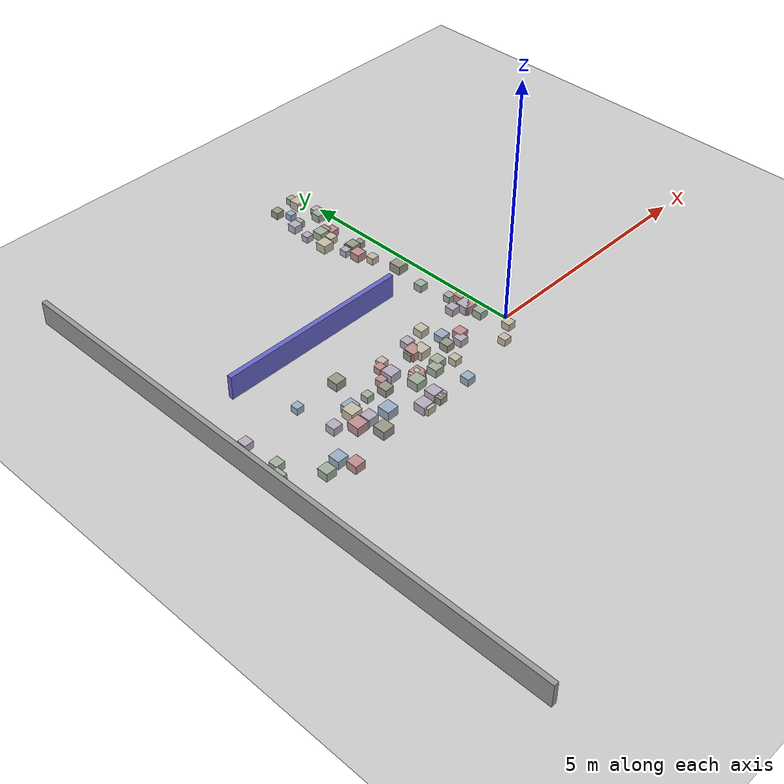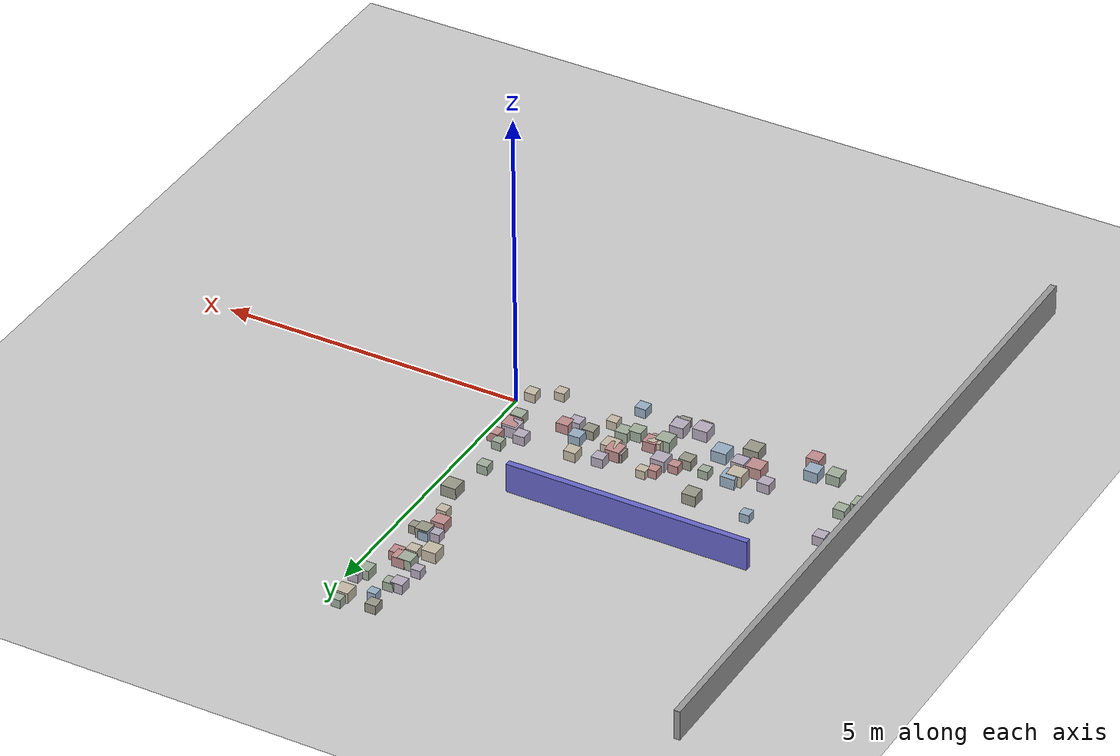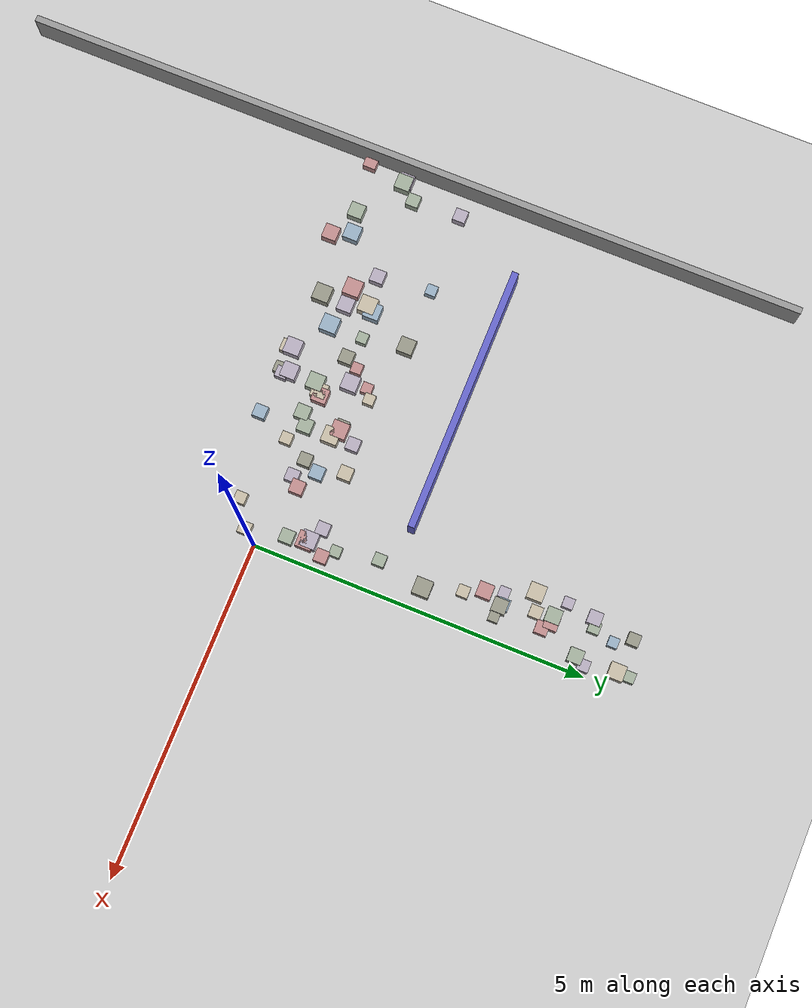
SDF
<sdf version="1.6">
 <world name="small_maze_world">
  <include><uri>model://ground_plane</uri></include>
  <include><uri>model://sun</uri></include>
  <model name="wall_west">
   <static>true</static>
   <pose>-6 0 0.25 0 0 0</pose>
   <link name="link">
    <collision name="collision"><geometry><box><size>0.1 12 0.5</size></box></geometry></collision>
    <visual name="visual">
     <geometry><box><size>0.1 12 0.5</size></box></geometry>
     <material><ambient>0.6 0.6 0.6 1</ambient></material>
    </visual>
   </link>
  </model>
  <model name="maze_wall_1">
   <static>true</static>
   <pose>-3 2 0.25 0 0 0</pose>
   <link name="link">
    <collision name="collision"><geometry><box><size>4 0.1 0.5</size></box></geometry></collision>
    <visual name="visual">
     <geometry><box><size>4 0.1 0.5</size></box></geometry>
     <material><ambient>0.4 0.4 0.8 1</ambient></material>
    </visual>
   </link>
  </model>
  <model name="box_3">
   <static>false</static>
   <pose>-2.35 0.05 0.05 0 0 0</pose>
   <link name="link">
    <inertial>
     <mass>0.2</mass>
     <inertia><ixx>0.001</ixx><iyy>0.001</iyy><izz>0.001</izz><ixy>0</ixy><ixz>0</ixz><iyz>0</iyz></inertia>
    </inertial>
    <collision name="collision"><geometry><box><size>0.22 0.22 0.22</size></box></geometry></collision>
    <visual name="visual">
     <geometry><box><size>0.22 0.22 0.22</size></box></geometry>
     <material><ambient>0.76 0.56 0.56 1</ambient><diffuse>0.76 0.56 0.56 1</diffuse></material>
    </visual>
   </link>
  </model>
  <model name="box_5">
   <static>false</static>
   <pose>-0.54 4.31 0.05 0 0 0</pose>
   <link name="link">
    <inertial>
     <mass>0.2</mass>
     <inertia><ixx>0.001</ixx><iyy>0.001</iyy><izz>0.001</izz><ixy>0</ixy><ixz>0</ixz><iyz>0</iyz></inertia>
    </inertial>
    <collision name="collision"><geometry><box><size>0.21 0.21 0.21</size></box></geometry></collision>
    <visual name="visual">
     <geometry><box><size>0.21 0.21 0.21</size></box></geometry>
     <material><ambient>0.76 0.56 0.56 1</ambient><diffuse>0.76 0.56 0.56 1</diffuse></material>
    </visual>
   </link>
  </model>
  <model name="box_6">
   <static>false</static>
   <pose>-3.02 0.18 0.05 0 0 0</pose>
   <link name="link">
    <inertial>
     <mass>0.2</mass>
     <inertia><ixx>0.001</ixx><iyy>0.001</iyy><izz>0.001</izz><ixy>0</ixy><ixz>0</ixz><iyz>0</iyz></inertia>
    </inertial>
    <collision name="collision"><geometry><box><size>0.2 0.2 0.2</size></box></geometry></collision>
    <visual name="visual">
     <geometry><box><size>0.2 0.2 0.2</size></box></geometry>
     <material><ambient>0.6 0.6 0.54 1</ambient><diffuse>0.6 0.6 0.54 1</diffuse></material>
    </visual>
   </link>
  </model>
  <model name="box_11">
   <static>false</static>
   <pose>-2.52 -0.5 0.05 0 0 0</pose>
   <link name="link">
    <inertial>
     <mass>0.2</mass>
     <inertia><ixx>0.001</ixx><iyy>0.001</iyy><izz>0.001</izz><ixy>0</ixy><ixz>0</ixz><iyz>0</iyz></inertia>
    </inertial>
    <collision name="collision"><geometry><box><size>0.23 0.23 0.23</size></box></geometry></collision>
    <visual name="visual">
     <geometry><box><size>0.23 0.23 0.23</size></box></geometry>
     <material><ambient>0.72 0.68 0.75 1</ambient><diffuse>0.72 0.68 0.75 1</diffuse></material>
    </visual>
   </link>
  </model>
  <model name="box_15">
   <static>false</static>
   <pose>-2.52 -0.65 0.05 0 0 0</pose>
   <link name="link">
    <inertial>
     <mass>0.2</mass>
     <inertia><ixx>0.001</ixx><iyy>0.001</iyy><izz>0.001</izz><ixy>0</ixy><ixz>0</ixz><iyz>0</iyz></inertia>
    </inertial>
    <collision name="collision"><geometry><box><size>0.17 0.17 0.17</size></box></geometry></collision>
    <visual name="visual">
     <geometry><box><size>0.17 0.17 0.17</size></box></geometry>
     <material><ambient>0.6 0.6 0.54 1</ambient><diffuse>0.6 0.6 0.54 1</diffuse></material>
    </visual>
   </link>
  </model>
  <model name="box_19">
   <static>false</static>
   <pose>-2.85 -0.67 0.05 0 0 0</pose>
   <link name="link">
    <inertial>
     <mass>0.2</mass>
     <inertia><ixx>0.001</ixx><iyy>0.001</iyy><izz>0.001</izz><ixy>0</ixy><ixz>0</ixz><iyz>0</iyz></inertia>
    </inertial>
    <collision name="collision"><geometry><box><size>0.19 0.19 0.19</size></box></geometry></collision>
    <visual name="visual">
     <geometry><box><size>0.19 0.19 0.19</size></box></geometry>
     <material><ambient>0.78 0.74 0.66 1</ambient><diffuse>0.78 0.74 0.66 1</diffuse></material>
    </visual>
   </link>
  </model>
  <model name="box_48">
   <static>false</static>
   <pose>-2.41 0.01 0.05 0 0 0</pose>
   <link name="link">
    <inertial>
     <mass>0.2</mass>
     <inertia><ixx>0.001</ixx><iyy>0.001</iyy><izz>0.001</izz><ixy>0</ixy><ixz>0</ixz><iyz>0</iyz></inertia>
    </inertial>
    <collision name="collision"><geometry><box><size>0.22 0.22 0.22</size></box></geometry></collision>
    <visual name="visual">
     <geometry><box><size>0.22 0.22 0.22</size></box></geometry>
     <material><ambient>0.78 0.74 0.66 1</ambient><diffuse>0.78 0.74 0.66 1</diffuse></material>
    </visual>
   </link>
  </model>
  <model name="box_56">
   <static>false</static>
   <pose>-0.24 5.4 0.05 0 0 0</pose>
   <link name="link">
    <inertial>
     <mass>0.2</mass>
     <inertia><ixx>0.001</ixx><iyy>0.001</iyy><izz>0.001</izz><ixy>0</ixy><ixz>0</ixz><iyz>0</iyz></inertia>
    </inertial>
    <collision name="collision"><geometry><box><size>0.23 0.23 0.23</size></box></geometry></collision>
    <visual name="visual">
     <geometry><box><size>0.23 0.23 0.23</size></box></geometry>
     <material><ambient>0.78 0.74 0.66 1</ambient><diffuse>0.78 0.74 0.66 1</diffuse></material>
    </visual>
   </link>
  </model>
  <model name="box_68">
   <static>false</static>
   <pose>-3.74 -0.13 0.05 0 0 0</pose>
   <link name="link">
    <inertial>
     <mass>0.2</mass>
     <inertia><ixx>0.001</ixx><iyy>0.001</iyy><izz>0.001</izz><ixy>0</ixy><ixz>0</ixz><iyz>0</iyz></inertia>
    </inertial>
    <collision name="collision"><geometry><box><size>0.22 0.22 0.22</size></box></geometry></collision>
    <visual name="visual">
     <geometry><box><size>0.22 0.22 0.22</size></box></geometry>
     <material><ambient>0.72 0.68 0.75 1</ambient><diffuse>0.72 0.68 0.75 1</diffuse></material>
    </visual>
   </link>
  </model>
  <model name="box_69">
   <static>false</static>
   <pose>-2.92 0.38 0.05 0 0 0</pose>
   <link name="link">
    <inertial>
     <mass>0.2</mass>
     <inertia><ixx>0.001</ixx><iyy>0.001</iyy><izz>0.001</izz><ixy>0</ixy><ixz>0</ixz><iyz>0</iyz></inertia>
    </inertial>
    <collision name="collision"><geometry><box><size>0.16 0.16 0.16</size></box></geometry></collision>
    <visual name="visual">
     <geometry><box><size>0.16 0.16 0.16</size></box></geometry>
     <material><ambient>0.76 0.56 0.56 1</ambient><diffuse>0.76 0.56 0.56 1</diffuse></material>
    </visual>
   </link>
  </model>
  <model name="box_71">
   <static>false</static>
   <pose>-2.03 -0.09 0.05 0 0 0</pose>
   <link name="link">
    <inertial>
     <mass>0.2</mass>
     <inertia><ixx>0.001</ixx><iyy>0.001</iyy><izz>0.001</izz><ixy>0</ixy><ixz>0</ixz><iyz>0</iyz></inertia>
    </inertial>
    <collision name="collision"><geometry><box><size>0.21 0.21 0.21</size></box></geometry></collision>
    <visual name="visual">
     <geometry><box><size>0.21 0.21 0.21</size></box></geometry>
     <material><ambient>0.64 0.69 0.62 1</ambient><diffuse>0.64 0.69 0.62 1</diffuse></material>
    </visual>
   </link>
  </model>
  <model name="box_82">
   <static>false</static>
   <pose>-0.35 0.71 0.05 0 0 0</pose>
   <link name="link">
    <inertial>
     <mass>0.2</mass>
     <inertia><ixx>0.001</ixx><iyy>0.001</iyy><izz>0.001</izz><ixy>0</ixy><ixz>0</ixz><iyz>0</iyz></inertia>
    </inertial>
    <collision name="collision"><geometry><box><size>0.24 0.24 0.24</size></box></geometry></collision>
    <visual name="visual">
     <geometry><box><size>0.24 0.24 0.24</size></box></geometry>
     <material><ambient>0.72 0.68 0.75 1</ambient><diffuse>0.72 0.68 0.75 1</diffuse></material>
    </visual>
   </link>
  </model>
  <model name="box_84">
   <static>false</static>
   <pose>-3.49 0.92 0.05 0 0 0</pose>
   <link name="link">
    <inertial>
     <mass>0.2</mass>
     <inertia><ixx>0.001</ixx><iyy>0.001</iyy><izz>0.001</izz><ixy>0</ixy><ixz>0</ixz><iyz>0</iyz></inertia>
    </inertial>
    <collision name="collision"><geometry><box><size>0.23 0.23 0.23</size></box></geometry></collision>
    <visual name="visual">
     <geometry><box><size>0.23 0.23 0.23</size></box></geometry>
     <material><ambient>0.6 0.6 0.54 1</ambient><diffuse>0.6 0.6 0.54 1</diffuse></material>
    </visual>
   </link>
  </model>
  <model name="box_85">
   <static>false</static>
   <pose>-0.6 4.05 0.05 0 0 0</pose>
   <link name="link">
    <inertial>
     <mass>0.2</mass>
     <inertia><ixx>0.001</ixx><iyy>0.001</iyy><izz>0.001</izz><ixy>0</ixy><ixz>0</ixz><iyz>0</iyz></inertia>
    </inertial>
    <collision name="collision"><geometry><box><size>0.18 0.18 0.18</size></box></geometry></collision>
    <visual name="visual">
     <geometry><box><size>0.18 0.18 0.18</size></box></geometry>
     <material><ambient>0.78 0.74 0.66 1</ambient><diffuse>0.78 0.74 0.66 1</diffuse></material>
    </visual>
   </link>
  </model>
  <model name="box_100">
   <static>false</static>
   <pose>-1.43 0.82 0.05 0 0 0</pose>
   <link name="link">
    <inertial>
     <mass>0.2</mass>
     <inertia><ixx>0.001</ixx><iyy>0.001</iyy><izz>0.001</izz><ixy>0</ixy><ixz>0</ixz><iyz>0</iyz></inertia>
    </inertial>
    <collision name="collision"><geometry><box><size>0.2 0.2 0.2</size></box></geometry></collision>
    <visual name="visual">
     <geometry><box><size>0.2 0.2 0.2</size></box></geometry>
     <material><ambient>0.78 0.74 0.66 1</ambient><diffuse>0.78 0.74 0.66 1</diffuse></material>
    </visual>
   </link>
  </model>
  <model name="box_109">
   <static>false</static>
   <pose>-5.58 0.18 0.05 0 0 0</pose>
   <link name="link">
    <inertial>
     <mass>0.2</mass>
     <inertia><ixx>0.001</ixx><iyy>0.001</iyy><izz>0.001</izz><ixy>0</ixy><ixz>0</ixz><iyz>0</iyz></inertia>
    </inertial>
    <collision name="collision"><geometry><box><size>0.19 0.19 0.19</size></box></geometry></collision>
    <visual name="visual">
     <geometry><box><size>0.19 0.19 0.19</size></box></geometry>
     <material><ambient>0.64 0.69 0.62 1</ambient><diffuse>0.64 0.69 0.62 1</diffuse></material>
    </visual>
   </link>
  </model>
  <model name="box_113">
   <static>false</static>
   <pose>-4.41 0.94 0.05 0 0 0</pose>
   <link name="link">
    <inertial>
     <mass>0.2</mass>
     <inertia><ixx>0.001</ixx><iyy>0.001</iyy><izz>0.001</izz><ixy>0</ixy><ixz>0</ixz><iyz>0</iyz></inertia>
    </inertial>
    <collision name="collision"><geometry><box><size>0.16 0.16 0.16</size></box></geometry></collision>
    <visual name="visual">
     <geometry><box><size>0.16 0.16 0.16</size></box></geometry>
     <material><ambient>0.6 0.69 0.77 1</ambient><diffuse>0.6 0.69 0.77 1</diffuse></material>
    </visual>
   </link>
  </model>
  <model name="box_115">
   <static>false</static>
   <pose>-0.28 0.4 0.05 0 0 0</pose>
   <link name="link">
    <inertial>
     <mass>0.2</mass>
     <inertia><ixx>0.001</ixx><iyy>0.001</iyy><izz>0.001</izz><ixy>0</ixy><ixz>0</ixz><iyz>0</iyz></inertia>
    </inertial>
    <collision name="collision"><geometry><box><size>0.2 0.2 0.2</size></box></geometry></collision>
    <visual name="visual">
     <geometry><box><size>0.2 0.2 0.2</size></box></geometry>
     <material><ambient>0.64 0.69 0.62 1</ambient><diffuse>0.64 0.69 0.62 1</diffuse></material>
    </visual>
   </link>
  </model>
  <model name="box_128">
   <static>false</static>
   <pose>-0.83 4.85 0.05 0 0 0</pose>
   <link name="link">
    <inertial>
     <mass>0.2</mass>
     <inertia><ixx>0.001</ixx><iyy>0.001</iyy><izz>0.001</izz><ixy>0</ixy><ixz>0</ixz><iyz>0</iyz></inertia>
    </inertial>
    <collision name="collision"><geometry><box><size>0.2 0.2 0.2</size></box></geometry></collision>
    <visual name="visual">
     <geometry><box><size>0.2 0.2 0.2</size></box></geometry>
     <material><ambient>0.72 0.68 0.75 1</ambient><diffuse>0.72 0.68 0.75 1</diffuse></material>
    </visual>
   </link>
  </model>
  <model name="box_134">
   <static>false</static>
   <pose>-0.42 4.21 0.05 0 0 0</pose>
   <link name="link">
    <inertial>
     <mass>0.2</mass>
     <inertia><ixx>0.001</ixx><iyy>0.001</iyy><izz>0.001</izz><ixy>0</ixy><ixz>0</ixz><iyz>0</iyz></inertia>
    </inertial>
    <collision name="collision"><geometry><box><size>0.19 0.19 0.19</size></box></geometry></collision>
    <visual name="visual">
     <geometry><box><size>0.19 0.19 0.19</size></box></geometry>
     <material><ambient>0.76 0.56 0.56 1</ambient><diffuse>0.76 0.56 0.56 1</diffuse></material>
    </visual>
   </link>
  </model>
  <model name="box_135">
   <static>false</static>
   <pose>-0.61 5.21 0.05 0 0 0</pose>
   <link name="link">
    <inertial>
     <mass>0.2</mass>
     <inertia><ixx>0.001</ixx><iyy>0.001</iyy><izz>0.001</izz><ixy>0</ixy><ixz>0</ixz><iyz>0</iyz></inertia>
    </inertial>
    <collision name="collision"><geometry><box><size>0.15 0.15 0.15</size></box></geometry></collision>
    <visual name="visual">
     <geometry><box><size>0.15 0.15 0.15</size></box></geometry>
     <material><ambient>0.6 0.69 0.77 1</ambient><diffuse>0.6 0.69 0.77 1</diffuse></material>
    </visual>
   </link>
  </model>
  <model name="box_142">
   <static>false</static>
   <pose>-2.87 -0.59 0.05 0 0 0</pose>
   <link name="link">
    <inertial>
     <mass>0.2</mass>
     <inertia><ixx>0.001</ixx><iyy>0.001</iyy><izz>0.001</izz><ixy>0</ixy><ixz>0</ixz><iyz>0</iyz></inertia>
    </inertial>
    <collision name="collision"><geometry><box><size>0.24 0.24 0.24</size></box></geometry></collision>
    <visual name="visual">
     <geometry><box><size>0.24 0.24 0.24</size></box></geometry>
     <material><ambient>0.72 0.68 0.75 1</ambient><diffuse>0.72 0.68 0.75 1</diffuse></material>
    </visual>
   </link>
  </model>
  <model name="box_143">
   <static>false</static>
   <pose>-2.46 -0.6 0.05 0 0 0</pose>
   <link name="link">
    <inertial>
     <mass>0.2</mass>
     <inertia><ixx>0.001</ixx><iyy>0.001</iyy><izz>0.001</izz><ixy>0</ixy><ixz>0</ixz><iyz>0</iyz></inertia>
    </inertial>
    <collision name="collision"><geometry><box><size>0.17 0.17 0.17</size></box></geometry></collision>
    <visual name="visual">
     <geometry><box><size>0.17 0.17 0.17</size></box></geometry>
     <material><ambient>0.72 0.68 0.75 1</ambient><diffuse>0.72 0.68 0.75 1</diffuse></material>
    </visual>
   </link>
  </model>
  <model name="box_144">
   <static>false</static>
   <pose>-0.32 2.45 0.05 0 0 0</pose>
   <link name="link">
    <inertial>
     <mass>0.2</mass>
     <inertia><ixx>0.001</ixx><iyy>0.001</iyy><izz>0.001</izz><ixy>0</ixy><ixz>0</ixz><iyz>0</iyz></inertia>
    </inertial>
    <collision name="collision"><geometry><box><size>0.25 0.25 0.25</size></box></geometry></collision>
    <visual name="visual">
     <geometry><box><size>0.25 0.25 0.25</size></box></geometry>
     <material><ambient>0.6 0.6 0.54 1</ambient><diffuse>0.6 0.6 0.54 1</diffuse></material>
    </visual>
   </link>
  </model>
  <model name="box_147">
   <static>false</static>
   <pose>-1.86 0.42 0.05 0 0 0</pose>
   <link name="link">
    <inertial>
     <mass>0.2</mass>
     <inertia><ixx>0.001</ixx><iyy>0.001</iyy><izz>0.001</izz><ixy>0</ixy><ixz>0</ixz><iyz>0</iyz></inertia>
    </inertial>
    <collision name="collision"><geometry><box><size>0.24 0.24 0.24</size></box></geometry></collision>
    <visual name="visual">
     <geometry><box><size>0.24 0.24 0.24</size></box></geometry>
     <material><ambient>0.78 0.74 0.66 1</ambient><diffuse>0.78 0.74 0.66 1</diffuse></material>
    </visual>
   </link>
  </model>
  <model name="box_149">
   <static>false</static>
   <pose>-3.85 0.17 0.05 0 0 0</pose>
   <link name="link">
    <inertial>
     <mass>0.2</mass>
     <inertia><ixx>0.001</ixx><iyy>0.001</iyy><izz>0.001</izz><ixy>0</ixy><ixz>0</ixz><iyz>0</iyz></inertia>
    </inertial>
    <collision name="collision"><geometry><box><size>0.25 0.25 0.25</size></box></geometry></collision>
    <visual name="visual">
     <geometry><box><size>0.25 0.25 0.25</size></box></geometry>
     <material><ambient>0.78 0.74 0.66 1</ambient><diffuse>0.78 0.74 0.66 1</diffuse></material>
    </visual>
   </link>
  </model>
  <model name="box_151">
   <static>false</static>
   <pose>-0.61 3.28 0.05 0 0 0</pose>
   <link name="link">
    <inertial>
     <mass>0.2</mass>
     <inertia><ixx>0.001</ixx><iyy>0.001</iyy><izz>0.001</izz><ixy>0</ixy><ixz>0</ixz><iyz>0</iyz></inertia>
    </inertial>
    <collision name="collision"><geometry><box><size>0.22 0.22 0.22</size></box></geometry></collision>
    <visual name="visual">
     <geometry><box><size>0.22 0.22 0.22</size></box></geometry>
     <material><ambient>0.76 0.56 0.56 1</ambient><diffuse>0.76 0.56 0.56 1</diffuse></material>
    </visual>
   </link>
  </model>
  <model name="box_160">
   <static>false</static>
   <pose>-4.01 -0.13 0.05 0 0 0</pose>
   <link name="link">
    <inertial>
     <mass>0.2</mass>
     <inertia><ixx>0.001</ixx><iyy>0.001</iyy><izz>0.001</izz><ixy>0</ixy><ixz>0</ixz><iyz>0</iyz></inertia>
    </inertial>
    <collision name="collision"><geometry><box><size>0.25 0.25 0.25</size></box></geometry></collision>
    <visual name="visual">
     <geometry><box><size>0.25 0.25 0.25</size></box></geometry>
     <material><ambient>0.76 0.56 0.56 1</ambient><diffuse>0.76 0.56 0.56 1</diffuse></material>
    </visual>
   </link>
  </model>
  <model name="box_161">
   <static>false</static>
   <pose>-1.86 0.76 0.05 0 0 0</pose>
   <link name="link">
    <inertial>
     <mass>0.2</mass>
     <inertia><ixx>0.001</ixx><iyy>0.001</iyy><izz>0.001</izz><ixy>0</ixy><ixz>0</ixz><iyz>0</iyz></inertia>
    </inertial>
    <collision name="collision"><geometry><box><size>0.19 0.19 0.19</size></box></geometry></collision>
    <visual name="visual">
     <geometry><box><size>0.19 0.19 0.19</size></box></geometry>
     <material><ambient>0.72 0.68 0.75 1</ambient><diffuse>0.72 0.68 0.75 1</diffuse></material>
    </visual>
   </link>
  </model>
  <model name="box_171">
   <static>false</static>
   <pose>-0.15 4.94 0.05 0 0 0</pose>
   <link name="link">
    <inertial>
     <mass>0.2</mass>
     <inertia><ixx>0.001</ixx><iyy>0.001</iyy><izz>0.001</izz><ixy>0</ixy><ixz>0</ixz><iyz>0</iyz></inertia>
    </inertial>
    <collision name="collision"><geometry><box><size>0.17 0.17 0.17</size></box></geometry></collision>
    <visual name="visual">
     <geometry><box><size>0.17 0.17 0.17</size></box></geometry>
     <material><ambient>0.72 0.68 0.75 1</ambient><diffuse>0.72 0.68 0.75 1</diffuse></material>
    </visual>
   </link>
  </model>
  <model name="box_178">
   <static>false</static>
   <pose>-4.79 -0.46 0.05 0 0 0</pose>
   <link name="link">
    <inertial>
     <mass>0.2</mass>
     <inertia><ixx>0.001</ixx><iyy>0.001</iyy><izz>0.001</izz><ixy>0</ixy><ixz>0</ixz><iyz>0</iyz></inertia>
    </inertial>
    <collision name="collision"><geometry><box><size>0.23 0.23 0.23</size></box></geometry></collision>
    <visual name="visual">
     <geometry><box><size>0.23 0.23 0.23</size></box></geometry>
     <material><ambient>0.6 0.69 0.77 1</ambient><diffuse>0.6 0.69 0.77 1</diffuse></material>
    </visual>
   </link>
  </model>
  <model name="box_181">
   <static>false</static>
   <pose>-5.12 -0.53 0.05 0 0 0</pose>
   <link name="link">
    <inertial>
     <mass>0.2</mass>
     <inertia><ixx>0.001</ixx><iyy>0.001</iyy><izz>0.001</izz><ixy>0</ixy><ixz>0</ixz><iyz>0</iyz></inertia>
    </inertial>
    <collision name="collision"><geometry><box><size>0.22 0.22 0.22</size></box></geometry></collision>
    <visual name="visual">
     <geometry><box><size>0.22 0.22 0.22</size></box></geometry>
     <material><ambient>0.64 0.69 0.62 1</ambient><diffuse>0.64 0.69 0.62 1</diffuse></material>
    </visual>
   </link>
  </model>
  <model name="box_191">
   <static>false</static>
   <pose>-0.86 3.96 0.05 0 0 0</pose>
   <link name="link">
    <inertial>
     <mass>0.2</mass>
     <inertia><ixx>0.001</ixx><iyy>0.001</iyy><izz>0.001</izz><ixy>0</ixy><ixz>0</ixz><iyz>0</iyz></inertia>
    </inertial>
    <collision name="collision"><geometry><box><size>0.24 0.24 0.24</size></box></geometry></collision>
    <visual name="visual">
     <geometry><box><size>0.24 0.24 0.24</size></box></geometry>
     <material><ambient>0.78 0.74 0.66 1</ambient><diffuse>0.78 0.74 0.66 1</diffuse></material>
    </visual>
   </link>
  </model>
  <model name="box_195">
   <static>false</static>
   <pose>-1.86 0.02 0.05 0 0 0</pose>
   <link name="link">
    <inertial>
     <mass>0.2</mass>
     <inertia><ixx>0.001</ixx><iyy>0.001</iyy><izz>0.001</izz><ixy>0</ixy><ixz>0</ixz><iyz>0</iyz></inertia>
    </inertial>
    <collision name="collision"><geometry><box><size>0.21 0.21 0.21</size></box></geometry></collision>
    <visual name="visual">
     <geometry><box><size>0.21 0.21 0.21</size></box></geometry>
     <material><ambient>0.64 0.69 0.62 1</ambient><diffuse>0.64 0.69 0.62 1</diffuse></material>
    </visual>
   </link>
  </model>
  <model name="box_204">
   <static>false</static>
   <pose>-0.89 4.43 0.05 0 0 0</pose>
   <link name="link">
    <inertial>
     <mass>0.2</mass>
     <inertia><ixx>0.001</ixx><iyy>0.001</iyy><izz>0.001</izz><ixy>0</ixy><ixz>0</ixz><iyz>0</iyz></inertia>
    </inertial>
    <collision name="collision"><geometry><box><size>0.16 0.16 0.16</size></box></geometry></collision>
    <visual name="visual">
     <geometry><box><size>0.16 0.16 0.16</size></box></geometry>
     <material><ambient>0.72 0.68 0.75 1</ambient><diffuse>0.72 0.68 0.75 1</diffuse></material>
    </visual>
   </link>
  </model>
  <model name="box_207">
   <static>false</static>
   <pose>-0.69 3.54 0.05 0 0 0</pose>
   <link name="link">
    <inertial>
     <mass>0.2</mass>
     <inertia><ixx>0.001</ixx><iyy>0.001</iyy><izz>0.001</izz><ixy>0</ixy><ixz>0</ixz><iyz>0</iyz></inertia>
    </inertial>
    <collision name="collision"><geometry><box><size>0.16 0.16 0.16</size></box></geometry></collision>
    <visual name="visual">
     <geometry><box><size>0.16 0.16 0.16</size></box></geometry>
     <material><ambient>0.72 0.68 0.75 1</ambient><diffuse>0.72 0.68 0.75 1</diffuse></material>
    </visual>
   </link>
  </model>
  <model name="box_214">
   <static>false</static>
   <pose>-1.81 -0.66 0.05 0 0 0</pose>
   <link name="link">
    <inertial>
     <mass>0.2</mass>
     <inertia><ixx>0.001</ixx><iyy>0.001</iyy><izz>0.001</izz><ixy>0</ixy><ixz>0</ixz><iyz>0</iyz></inertia>
    </inertial>
    <collision name="collision"><geometry><box><size>0.19 0.19 0.19</size></box></geometry></collision>
    <visual name="visual">
     <geometry><box><size>0.19 0.19 0.19</size></box></geometry>
     <material><ambient>0.6 0.69 0.77 1</ambient><diffuse>0.6 0.69 0.77 1</diffuse></material>
    </visual>
   </link>
  </model>
  <model name="box_216">
   <static>false</static>
   <pose>-3.79 0.27 0.05 0 0 0</pose>
   <link name="link">
    <inertial>
     <mass>0.2</mass>
     <inertia><ixx>0.001</ixx><iyy>0.001</iyy><izz>0.001</izz><ixy>0</ixy><ixz>0</ixz><iyz>0</iyz></inertia>
    </inertial>
    <collision name="collision"><geometry><box><size>0.24 0.24 0.24</size></box></geometry></collision>
    <visual name="visual">
     <geometry><box><size>0.24 0.24 0.24</size></box></geometry>
     <material><ambient>0.6 0.69 0.77 1</ambient><diffuse>0.6 0.69 0.77 1</diffuse></material>
    </visual>
   </link>
  </model>
  <model name="box_226">
   <static>false</static>
   <pose>-3.77 -0.51 0.05 0 0 0</pose>
   <link name="link">
    <inertial>
     <mass>0.2</mass>
     <inertia><ixx>0.001</ixx><iyy>0.001</iyy><izz>0.001</izz><ixy>0</ixy><ixz>0</ixz><iyz>0</iyz></inertia>
    </inertial>
    <collision name="collision"><geometry><box><size>0.25 0.25 0.25</size></box></geometry></collision>
    <visual name="visual">
     <geometry><box><size>0.25 0.25 0.25</size></box></geometry>
     <material><ambient>0.6 0.6 0.54 1</ambient><diffuse>0.6 0.6 0.54 1</diffuse></material>
    </visual>
   </link>
  </model>
  <model name="box_229">
   <static>false</static>
   <pose>-1.29 0.44 0.05 0 0 0</pose>
   <link name="link">
    <inertial>
     <mass>0.2</mass>
     <inertia><ixx>0.001</ixx><iyy>0.001</iyy><izz>0.001</izz><ixy>0</ixy><ixz>0</ixz><iyz>0</iyz></inertia>
    </inertial>
    <collision name="collision"><geometry><box><size>0.2 0.2 0.2</size></box></geometry></collision>
    <visual name="visual">
     <geometry><box><size>0.2 0.2 0.2</size></box></geometry>
     <material><ambient>0.6 0.69 0.77 1</ambient><diffuse>0.6 0.69 0.77 1</diffuse></material>
    </visual>
   </link>
  </model>
  <model name="box_232">
   <static>false</static>
   <pose>-0.53 3.59 0.05 0 0 0</pose>
   <link name="link">
    <inertial>
     <mass>0.2</mass>
     <inertia><ixx>0.001</ixx><iyy>0.001</iyy><izz>0.001</izz><ixy>0</ixy><ixz>0</ixz><iyz>0</iyz></inertia>
    </inertial>
    <collision name="collision"><geometry><box><size>0.17 0.17 0.17</size></box></geometry></collision>
    <visual name="visual">
     <geometry><box><size>0.17 0.17 0.17</size></box></geometry>
     <material><ambient>0.6 0.69 0.77 1</ambient><diffuse>0.6 0.69 0.77 1</diffuse></material>
    </visual>
   </link>
  </model>
  <model name="box_241">
   <static>false</static>
   <pose>-2.51 -0.09 0.05 0 0 0</pose>
   <link name="link">
    <inertial>
     <mass>0.2</mass>
     <inertia><ixx>0.001</ixx><iyy>0.001</iyy><izz>0.001</izz><ixy>0</ixy><ixz>0</ixz><iyz>0</iyz></inertia>
    </inertial>
    <collision name="collision"><geometry><box><size>0.24 0.24 0.24</size></box></geometry></collision>
    <visual name="visual">
     <geometry><box><size>0.24 0.24 0.24</size></box></geometry>
     <material><ambient>0.64 0.69 0.62 1</ambient><diffuse>0.64 0.69 0.62 1</diffuse></material>
    </visual>
   </link>
  </model>
  <model name="box_243">
   <static>false</static>
   <pose>-4.67 -0.75 0.05 0 0 0</pose>
   <link name="link">
    <inertial>
     <mass>0.2</mass>
     <inertia><ixx>0.001</ixx><iyy>0.001</iyy><izz>0.001</izz><ixy>0</ixy><ixz>0</ixz><iyz>0</iyz></inertia>
    </inertial>
    <collision name="collision"><geometry><box><size>0.22 0.22 0.22</size></box></geometry></collision>
    <visual name="visual">
     <geometry><box><size>0.22 0.22 0.22</size></box></geometry>
     <material><ambient>0.76 0.56 0.56 1</ambient><diffuse>0.76 0.56 0.56 1</diffuse></material>
    </visual>
   </link>
  </model>
  <model name="box_246">
   <static>false</static>
   <pose>-0.7 4.89 0.05 0 0 0</pose>
   <link name="link">
    <inertial>
     <mass>0.2</mass>
     <inertia><ixx>0.001</ixx><iyy>0.001</iyy><izz>0.001</izz><ixy>0</ixy><ixz>0</ixz><iyz>0</iyz></inertia>
    </inertial>
    <collision name="collision"><geometry><box><size>0.17 0.17 0.17</size></box></geometry></collision>
    <visual name="visual">
     <geometry><box><size>0.17 0.17 0.17</size></box></geometry>
     <material><ambient>0.64 0.69 0.62 1</ambient><diffuse>0.64 0.69 0.62 1</diffuse></material>
    </visual>
   </link>
  </model>
  <model name="box_252">
   <static>false</static>
   <pose>-2.7 0.63 0.05 0 0 0</pose>
   <link name="link">
    <inertial>
     <mass>0.2</mass>
     <inertia><ixx>0.001</ixx><iyy>0.001</iyy><izz>0.001</izz><ixy>0</ixy><ixz>0</ixz><iyz>0</iyz></inertia>
    </inertial>
    <collision name="collision"><geometry><box><size>0.16 0.16 0.16</size></box></geometry></collision>
    <visual name="visual">
     <geometry><box><size>0.16 0.16 0.16</size></box></geometry>
     <material><ambient>0.76 0.56 0.56 1</ambient><diffuse>0.76 0.56 0.56 1</diffuse></material>
    </visual>
   </link>
  </model>
  <model name="box_266">
   <static>false</static>
   <pose>-0.34 1.12 0.05 0 0 0</pose>
   <link name="link">
    <inertial>
     <mass>0.2</mass>
     <inertia><ixx>0.001</ixx><iyy>0.001</iyy><izz>0.001</izz><ixy>0</ixy><ixz>0</ixz><iyz>0</iyz></inertia>
    </inertial>
    <collision name="collision"><geometry><box><size>0.16 0.16 0.16</size></box></geometry></collision>
    <visual name="visual">
     <geometry><box><size>0.16 0.16 0.16</size></box></geometry>
     <material><ambient>0.64 0.69 0.62 1</ambient><diffuse>0.64 0.69 0.62 1</diffuse></material>
    </visual>
   </link>
  </model>
  <model name="box_289">
   <static>false</static>
   <pose>-1.59 -0.16 0.05 0 0 0</pose>
   <link name="link">
    <inertial>
     <mass>0.2</mass>
     <inertia><ixx>0.001</ixx><iyy>0.001</iyy><izz>0.001</izz><ixy>0</ixy><ixz>0</ixz><iyz>0</iyz></inertia>
    </inertial>
    <collision name="collision"><geometry><box><size>0.17 0.17 0.17</size></box></geometry></collision>
    <visual name="visual">
     <geometry><box><size>0.17 0.17 0.17</size></box></geometry>
     <material><ambient>0.78 0.74 0.66 1</ambient><diffuse>0.78 0.74 0.66 1</diffuse></material>
    </visual>
   </link>
  </model>
  <model name="box_296">
   <static>false</static>
   <pose>-5.9 -0.62 0.05 0 0 0</pose>
   <link name="link">
    <inertial>
     <mass>0.2</mass>
     <inertia><ixx>0.001</ixx><iyy>0.001</iyy><izz>0.001</izz><ixy>0</ixy><ixz>0</ixz><iyz>0</iyz></inertia>
    </inertial>
    <collision name="collision"><geometry><box><size>0.19 0.19 0.19</size></box></geometry></collision>
    <visual name="visual">
     <geometry><box><size>0.19 0.19 0.19</size></box></geometry>
     <material><ambient>0.76 0.56 0.56 1</ambient><diffuse>0.76 0.56 0.56 1</diffuse></material>
    </visual>
   </link>
  </model>
  <model name="box_301">
   <static>false</static>
   <pose>-0.17 -0.2 0.05 0 0 0</pose>
   <link name="link">
    <inertial>
     <mass>0.2</mass>
     <inertia><ixx>0.001</ixx><iyy>0.001</iyy><izz>0.001</izz><ixy>0</ixy><ixz>0</ixz><iyz>0</iyz></inertia>
    </inertial>
    <collision name="collision"><geometry><box><size>0.18 0.18 0.18</size></box></geometry></collision>
    <visual name="visual">
     <geometry><box><size>0.18 0.18 0.18</size></box></geometry>
     <material><ambient>0.78 0.74 0.66 1</ambient><diffuse>0.78 0.74 0.66 1</diffuse></material>
    </visual>
   </link>
  </model>
  <model name="box_314">
   <static>false</static>
   <pose>-1.4 0.21 0.05 0 0 0</pose>
   <link name="link">
    <inertial>
     <mass>0.2</mass>
     <inertia><ixx>0.001</ixx><iyy>0.001</iyy><izz>0.001</izz><ixy>0</ixy><ixz>0</ixz><iyz>0</iyz></inertia>
    </inertial>
    <collision name="collision"><geometry><box><size>0.19 0.19 0.19</size></box></geometry></collision>
    <visual name="visual">
     <geometry><box><size>0.19 0.19 0.19</size></box></geometry>
     <material><ambient>0.6 0.6 0.54 1</ambient><diffuse>0.6 0.6 0.54 1</diffuse></material>
    </visual>
   </link>
  </model>
  <model name="box_318">
   <static>false</static>
   <pose>-1.98 0.5 0.05 0 0 0</pose>
   <link name="link">
    <inertial>
     <mass>0.2</mass>
     <inertia><ixx>0.001</ixx><iyy>0.001</iyy><izz>0.001</izz><ixy>0</ixy><ixz>0</ixz><iyz>0</iyz></inertia>
    </inertial>
    <collision name="collision"><geometry><box><size>0.24 0.24 0.24</size></box></geometry></collision>
    <visual name="visual">
     <geometry><box><size>0.24 0.24 0.24</size></box></geometry>
     <material><ambient>0.76 0.56 0.56 1</ambient><diffuse>0.76 0.56 0.56 1</diffuse></material>
    </visual>
   </link>
  </model>
  <model name="box_322">
   <static>false</static>
   <pose>-0.49 3.55 0.05 0 0 0</pose>
   <link name="link">
    <inertial>
     <mass>0.2</mass>
     <inertia><ixx>0.001</ixx><iyy>0.001</iyy><izz>0.001</izz><ixy>0</ixy><ixz>0</ixz><iyz>0</iyz></inertia>
    </inertial>
    <collision name="collision"><geometry><box><size>0.21 0.21 0.21</size></box></geometry></collision>
    <visual name="visual">
     <geometry><box><size>0.21 0.21 0.21</size></box></geometry>
     <material><ambient>0.6 0.6 0.54 1</ambient><diffuse>0.6 0.6 0.54 1</diffuse></material>
    </visual>
   </link>
  </model>
  <model name="box_330">
   <static>false</static>
   <pose>-5.82 -0.03 0.05 0 0 0</pose>
   <link name="link">
    <inertial>
     <mass>0.2</mass>
     <inertia><ixx>0.001</ixx><iyy>0.001</iyy><izz>0.001</izz><ixy>0</ixy><ixz>0</ixz><iyz>0</iyz></inertia>
    </inertial>
    <collision name="collision"><geometry><box><size>0.21 0.21 0.21</size></box></geometry></collision>
    <visual name="visual">
     <geometry><box><size>0.21 0.21 0.21</size></box></geometry>
     <material><ambient>0.72 0.68 0.75 1</ambient><diffuse>0.72 0.68 0.75 1</diffuse></material>
    </visual>
   </link>
  </model>
  <model name="box_331">
   <static>false</static>
   <pose>-0.24 5.59 0.05 0 0 0</pose>
   <link name="link">
    <inertial>
     <mass>0.2</mass>
     <inertia><ixx>0.001</ixx><iyy>0.001</iyy><izz>0.001</izz><ixy>0</ixy><ixz>0</ixz><iyz>0</iyz></inertia>
    </inertial>
    <collision name="collision"><geometry><box><size>0.16 0.16 0.16</size></box></geometry></collision>
    <visual name="visual">
     <geometry><box><size>0.16 0.16 0.16</size></box></geometry>
     <material><ambient>0.64 0.69 0.62 1</ambient><diffuse>0.64 0.69 0.62 1</diffuse></material>
    </visual>
   </link>
  </model>
  <model name="box_346">
   <static>false</static>
   <pose>-0.55 -0.43 0.05 0 0 0</pose>
   <link name="link">
    <inertial>
     <mass>0.2</mass>
     <inertia><ixx>0.001</ixx><iyy>0.001</iyy><izz>0.001</izz><ixy>0</ixy><ixz>0</ixz><iyz>0</iyz></inertia>
    </inertial>
    <collision name="collision"><geometry><box><size>0.17 0.17 0.17</size></box></geometry></collision>
    <visual name="visual">
     <geometry><box><size>0.17 0.17 0.17</size></box></geometry>
     <material><ambient>0.78 0.74 0.66 1</ambient><diffuse>0.78 0.74 0.66 1</diffuse></material>
    </visual>
   </link>
  </model>
  <model name="box_356">
   <static>false</static>
   <pose>-0.32 0.67 0.05 0 0 0</pose>
   <link name="link">
    <inertial>
     <mass>0.2</mass>
     <inertia><ixx>0.001</ixx><iyy>0.001</iyy><izz>0.001</izz><ixy>0</ixy><ixz>0</ixz><iyz>0</iyz></inertia>
    </inertial>
    <collision name="collision"><geometry><box><size>0.24 0.24 0.24</size></box></geometry></collision>
    <visual name="visual">
     <geometry><box><size>0.24 0.24 0.24</size></box></geometry>
     <material><ambient>0.76 0.56 0.56 1</ambient><diffuse>0.76 0.56 0.56 1</diffuse></material>
    </visual>
   </link>
  </model>
  <model name="box_364">
   <static>false</static>
   <pose>-0.23 4.79 0.05 0 0 0</pose>
   <link name="link">
    <inertial>
     <mass>0.2</mass>
     <inertia><ixx>0.001</ixx><iyy>0.001</iyy><izz>0.001</izz><ixy>0</ixy><ixz>0</ixz><iyz>0</iyz></inertia>
    </inertial>
    <collision name="collision"><geometry><box><size>0.21 0.21 0.21</size></box></geometry></collision>
    <visual name="visual">
     <geometry><box><size>0.21 0.21 0.21</size></box></geometry>
     <material><ambient>0.64 0.69 0.62 1</ambient><diffuse>0.64 0.69 0.62 1</diffuse></material>
    </visual>
   </link>
  </model>
  <model name="box_365">
   <static>false</static>
   <pose>-0.46 1.74 0.05 0 0 0</pose>
   <link name="link">
    <inertial>
     <mass>0.2</mass>
     <inertia><ixx>0.001</ixx><iyy>0.001</iyy><izz>0.001</izz><ixy>0</ixy><ixz>0</ixz><iyz>0</iyz></inertia>
    </inertial>
    <collision name="collision"><geometry><box><size>0.18 0.18 0.18</size></box></geometry></collision>
    <visual name="visual">
     <geometry><box><size>0.18 0.18 0.18</size></box></geometry>
     <material><ambient>0.64 0.69 0.62 1</ambient><diffuse>0.64 0.69 0.62 1</diffuse></material>
    </visual>
   </link>
  </model>
  <model name="box_376">
   <static>false</static>
   <pose>-3.37 0.28 0.05 0 0 0</pose>
   <link name="link">
    <inertial>
     <mass>0.2</mass>
     <inertia><ixx>0.001</ixx><iyy>0.001</iyy><izz>0.001</izz><ixy>0</ixy><ixz>0</ixz><iyz>0</iyz></inertia>
    </inertial>
    <collision name="collision"><geometry><box><size>0.16 0.16 0.16</size></box></geometry></collision>
    <visual name="visual">
     <geometry><box><size>0.16 0.16 0.16</size></box></geometry>
     <material><ambient>0.64 0.69 0.62 1</ambient><diffuse>0.64 0.69 0.62 1</diffuse></material>
    </visual>
   </link>
  </model>
  <model name="box_386">
   <static>false</static>
   <pose>-3.38 -0.23 0.05 0 0 0</pose>
   <link name="link">
    <inertial>
     <mass>0.2</mass>
     <inertia><ixx>0.001</ixx><iyy>0.001</iyy><izz>0.001</izz><ixy>0</ixy><ixz>0</ixz><iyz>0</iyz></inertia>
    </inertial>
    <collision name="collision"><geometry><box><size>0.25 0.25 0.25</size></box></geometry></collision>
    <visual name="visual">
     <geometry><box><size>0.25 0.25 0.25</size></box></geometry>
     <material><ambient>0.6 0.69 0.77 1</ambient><diffuse>0.6 0.69 0.77 1</diffuse></material>
    </visual>
   </link>
  </model>
  <model name="box_390">
   <static>false</static>
   <pose>-4.31 0.14 0.05 0 0 0</pose>
   <link name="link">
    <inertial>
     <mass>0.2</mass>
     <inertia><ixx>0.001</ixx><iyy>0.001</iyy><izz>0.001</izz><ixy>0</ixy><ixz>0</ixz><iyz>0</iyz></inertia>
    </inertial>
    <collision name="collision"><geometry><box><size>0.2 0.2 0.2</size></box></geometry></collision>
    <visual name="visual">
     <geometry><box><size>0.2 0.2 0.2</size></box></geometry>
     <material><ambient>0.72 0.68 0.75 1</ambient><diffuse>0.72 0.68 0.75 1</diffuse></material>
    </visual>
   </link>
  </model>
  <model name="box_400">
   <static>false</static>
   <pose>-0.2 0.96 0.05 0 0 0</pose>
   <link name="link">
    <inertial>
     <mass>0.2</mass>
     <inertia><ixx>0.001</ixx><iyy>0.001</iyy><izz>0.001</izz><ixy>0</ixy><ixz>0</ixz><iyz>0</iyz></inertia>
    </inertial>
    <collision name="collision"><geometry><box><size>0.19 0.19 0.19</size></box></geometry></collision>
    <visual name="visual">
     <geometry><box><size>0.19 0.19 0.19</size></box></geometry>
     <material><ambient>0.76 0.56 0.56 1</ambient><diffuse>0.76 0.56 0.56 1</diffuse></material>
    </visual>
   </link>
  </model>
  <model name="box_404">
   <static>false</static>
   <pose>-5.78 -0.05 0.05 0 0 0</pose>
   <link name="link">
    <inertial>
     <mass>0.2</mass>
     <inertia><ixx>0.001</ixx><iyy>0.001</iyy><izz>0.001</izz><ixy>0</ixy><ixz>0</ixz><iyz>0</iyz></inertia>
    </inertial>
    <collision name="collision"><geometry><box><size>0.23 0.23 0.23</size></box></geometry></collision>
    <visual name="visual">
     <geometry><box><size>0.23 0.23 0.23</size></box></geometry>
     <material><ambient>0.64 0.69 0.62 1</ambient><diffuse>0.64 0.69 0.62 1</diffuse></material>
    </visual>
   </link>
  </model>
  <model name="box_405">
   <static>false</static>
   <pose>-0.57 0.83 0.05 0 0 0</pose>
   <link name="link">
    <inertial>
     <mass>0.2</mass>
     <inertia><ixx>0.001</ixx><iyy>0.001</iyy><izz>0.001</izz><ixy>0</ixy><ixz>0</ixz><iyz>0</iyz></inertia>
    </inertial>
    <collision name="collision"><geometry><box><size>0.19 0.19 0.19</size></box></geometry></collision>
    <visual name="visual">
     <geometry><box><size>0.19 0.19 0.19</size></box></geometry>
     <material><ambient>0.72 0.68 0.75 1</ambient><diffuse>0.72 0.68 0.75 1</diffuse></material>
    </visual>
   </link>
  </model>
  <model name="box_410">
   <static>false</static>
   <pose>-0.99 0.26 0.05 0 0 0</pose>
   <link name="link">
    <inertial>
     <mass>0.2</mass>
     <inertia><ixx>0.001</ixx><iyy>0.001</iyy><izz>0.001</izz><ixy>0</ixy><ixz>0</ixz><iyz>0</iyz></inertia>
    </inertial>
    <collision name="collision"><geometry><box><size>0.2 0.2 0.2</size></box></geometry></collision>
    <visual name="visual">
     <geometry><box><size>0.2 0.2 0.2</size></box></geometry>
     <material><ambient>0.76 0.56 0.56 1</ambient><diffuse>0.76 0.56 0.56 1</diffuse></material>
    </visual>
   </link>
  </model>
  <model name="box_411">
   <static>false</static>
   <pose>-5.62 0.91 0.05 0 0 0</pose>
   <link name="link">
    <inertial>
     <mass>0.2</mass>
     <inertia><ixx>0.001</ixx><iyy>0.001</iyy><izz>0.001</izz><ixy>0</ixy><ixz>0</ixz><iyz>0</iyz></inertia>
    </inertial>
    <collision name="collision"><geometry><box><size>0.19 0.19 0.19</size></box></geometry></collision>
    <visual name="visual">
     <geometry><box><size>0.19 0.19 0.19</size></box></geometry>
     <material><ambient>0.72 0.68 0.75 1</ambient><diffuse>0.72 0.68 0.75 1</diffuse></material>
    </visual>
   </link>
  </model>
  <model name="box_419">
   <static>false</static>
   <pose>-0.64 4.3 0.05 0 0 0</pose>
   <link name="link">
    <inertial>
     <mass>0.2</mass>
     <inertia><ixx>0.001</ixx><iyy>0.001</iyy><izz>0.001</izz><ixy>0</ixy><ixz>0</ixz><iyz>0</iyz></inertia>
    </inertial>
    <collision name="collision"><geometry><box><size>0.22 0.22 0.22</size></box></geometry></collision>
    <visual name="visual">
     <geometry><box><size>0.22 0.22 0.22</size></box></geometry>
     <material><ambient>0.64 0.69 0.62 1</ambient><diffuse>0.64 0.69 0.62 1</diffuse></material>
    </visual>
   </link>
  </model>
  <model name="box_421">
   <static>false</static>
   <pose>-0.49 3.0 0.05 0 0 0</pose>
   <link name="link">
    <inertial>
     <mass>0.2</mass>
     <inertia><ixx>0.001</ixx><iyy>0.001</iyy><izz>0.001</izz><ixy>0</ixy><ixz>0</ixz><iyz>0</iyz></inertia>
    </inertial>
    <collision name="collision"><geometry><box><size>0.17 0.17 0.17</size></box></geometry></collision>
    <visual name="visual">
     <geometry><box><size>0.17 0.17 0.17</size></box></geometry>
     <material><ambient>0.78 0.74 0.66 1</ambient><diffuse>0.78 0.74 0.66 1</diffuse></material>
    </visual>
   </link>
  </model>
  <model name="box_431">
   <static>false</static>
   <pose>-2.05 0.51 0.05 0 0 0</pose>
   <link name="link">
    <inertial>
     <mass>0.2</mass>
     <inertia><ixx>0.001</ixx><iyy>0.001</iyy><izz>0.001</izz><ixy>0</ixy><ixz>0</ixz><iyz>0</iyz></inertia>
    </inertial>
    <collision name="collision"><geometry><box><size>0.18 0.18 0.18</size></box></geometry></collision>
    <visual name="visual">
     <geometry><box><size>0.18 0.18 0.18</size></box></geometry>
     <material><ambient>0.6 0.6 0.54 1</ambient><diffuse>0.6 0.6 0.54 1</diffuse></material>
    </visual>
   </link>
  </model>
  <model name="box_436">
   <static>false</static>
   <pose>-2.56 0.72 0.05 0 0 0</pose>
   <link name="link">
    <inertial>
     <mass>0.2</mass>
     <inertia><ixx>0.001</ixx><iyy>0.001</iyy><izz>0.001</izz><ixy>0</ixy><ixz>0</ixz><iyz>0</iyz></inertia>
    </inertial>
    <collision name="collision"><geometry><box><size>0.16 0.16 0.16</size></box></geometry></collision>
    <visual name="visual">
     <geometry><box><size>0.16 0.16 0.16</size></box></geometry>
     <material><ambient>0.78 0.74 0.66 1</ambient><diffuse>0.78 0.74 0.66 1</diffuse></material>
    </visual>
   </link>
  </model>
  <model name="box_441">
   <static>false</static>
   <pose>-0.32 3.53 0.05 0 0 0</pose>
   <link name="link">
    <inertial>
     <mass>0.2</mass>
     <inertia><ixx>0.001</ixx><iyy>0.001</iyy><izz>0.001</izz><ixy>0</ixy><ixz>0</ixz><iyz>0</iyz></inertia>
    </inertial>
    <collision name="collision"><geometry><box><size>0.15 0.15 0.15</size></box></geometry></collision>
    <visual name="visual">
     <geometry><box><size>0.15 0.15 0.15</size></box></geometry>
     <material><ambient>0.6 0.6 0.54 1</ambient><diffuse>0.6 0.6 0.54 1</diffuse></material>
    </visual>
   </link>
  </model>
  <model name="box_443">
   <static>false</static>
   <pose>-2.68 0.38 0.05 0 0 0</pose>
   <link name="link">
    <inertial>
     <mass>0.2</mass>
     <inertia><ixx>0.001</ixx><iyy>0.001</iyy><izz>0.001</izz><ixy>0</ixy><ixz>0</ixz><iyz>0</iyz></inertia>
    </inertial>
    <collision name="collision"><geometry><box><size>0.24 0.24 0.24</size></box></geometry></collision>
    <visual name="visual">
     <geometry><box><size>0.24 0.24 0.24</size></box></geometry>
     <material><ambient>0.72 0.68 0.75 1</ambient><diffuse>0.72 0.68 0.75 1</diffuse></material>
    </visual>
   </link>
  </model>
  <model name="box_447">
   <static>false</static>
   <pose>-0.75 5.46 0.05 0 0 0</pose>
   <link name="link">
    <inertial>
     <mass>0.2</mass>
     <inertia><ixx>0.001</ixx><iyy>0.001</iyy><izz>0.001</izz><ixy>0</ixy><ixz>0</ixz><iyz>0</iyz></inertia>
    </inertial>
    <collision name="collision"><geometry><box><size>0.18 0.18 0.18</size></box></geometry></collision>
    <visual name="visual">
     <geometry><box><size>0.18 0.18 0.18</size></box></geometry>
     <material><ambient>0.6 0.6 0.54 1</ambient><diffuse>0.6 0.6 0.54 1</diffuse></material>
    </visual>
   </link>
  </model>
  <model name="box_450">
   <static>false</static>
   <pose>-1.12 0.13 0.05 0 0 0</pose>
   <link name="link">
    <inertial>
     <mass>0.2</mass>
     <inertia><ixx>0.001</ixx><iyy>0.001</iyy><izz>0.001</izz><ixy>0</ixy><ixz>0</ixz><iyz>0</iyz></inertia>
    </inertial>
    <collision name="collision"><geometry><box><size>0.19 0.19 0.19</size></box></geometry></collision>
    <visual name="visual">
     <geometry><box><size>0.19 0.19 0.19</size></box></geometry>
     <material><ambient>0.72 0.68 0.75 1</ambient><diffuse>0.72 0.68 0.75 1</diffuse></material>
    </visual>
   </link>
  </model>
 </world>
</sdf>
